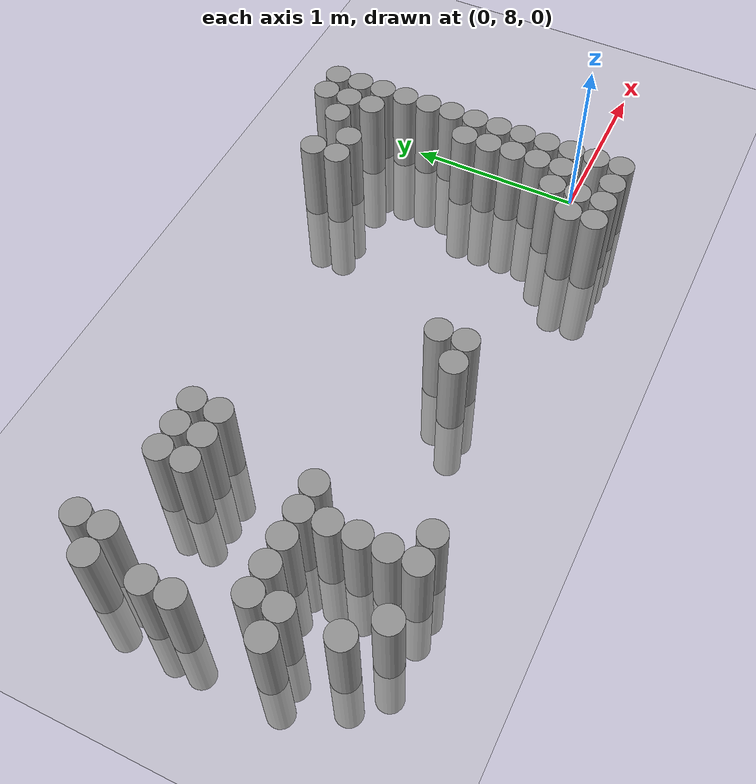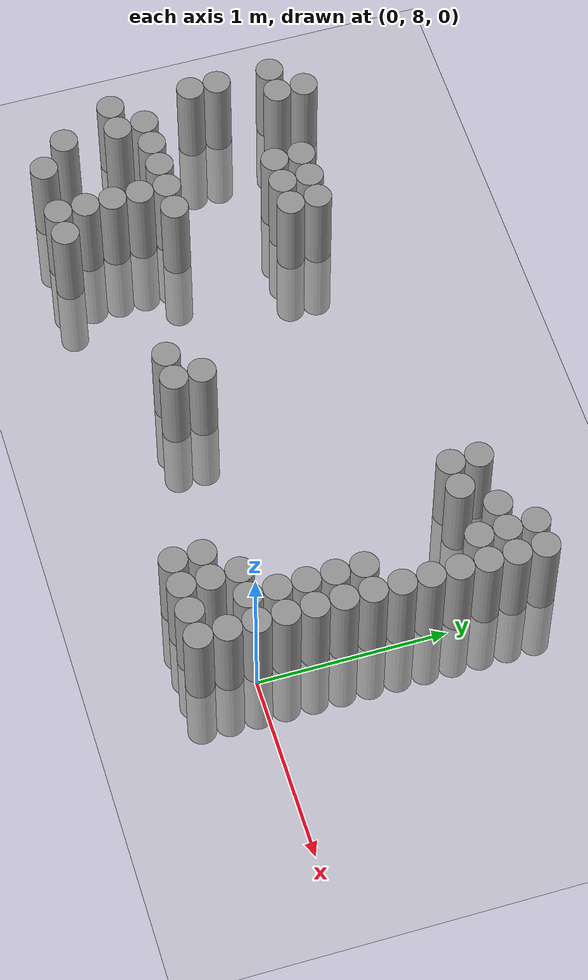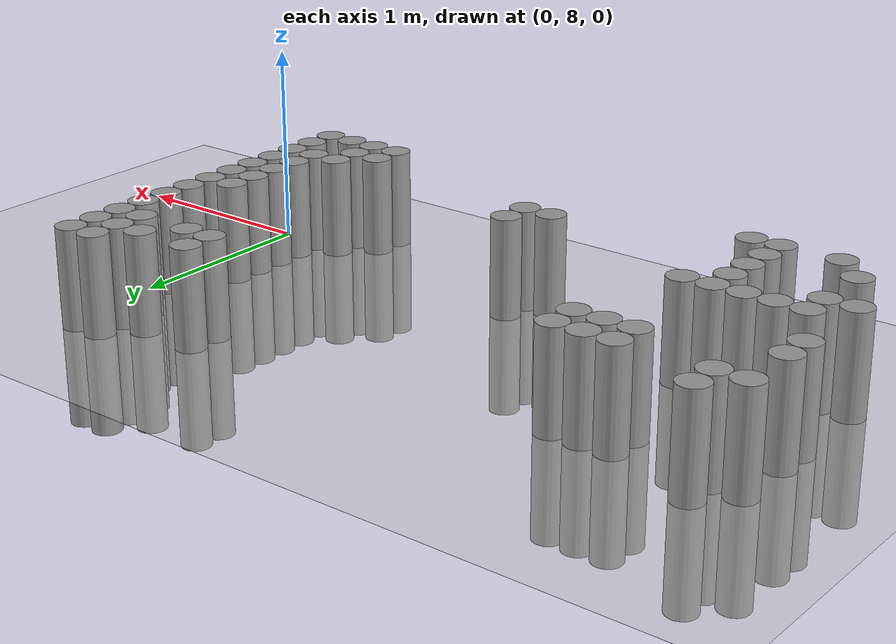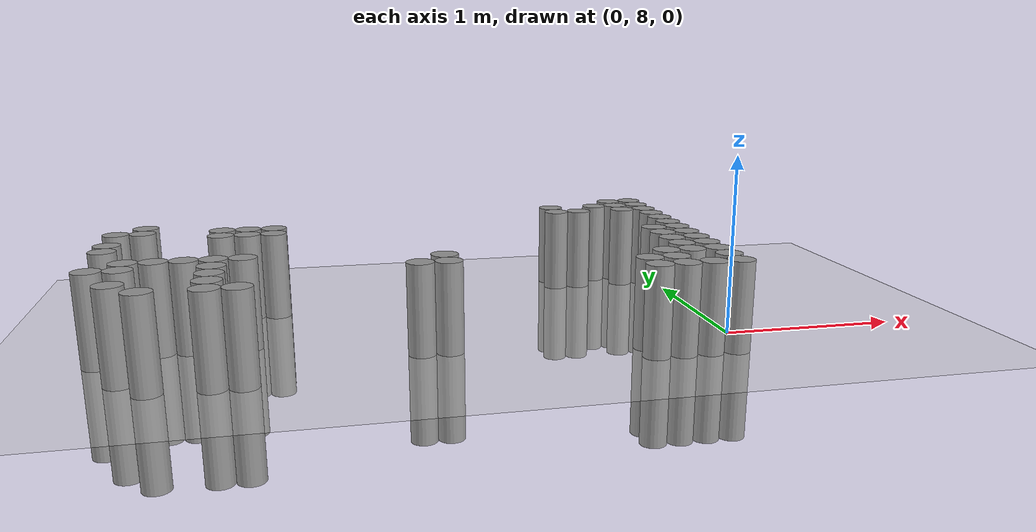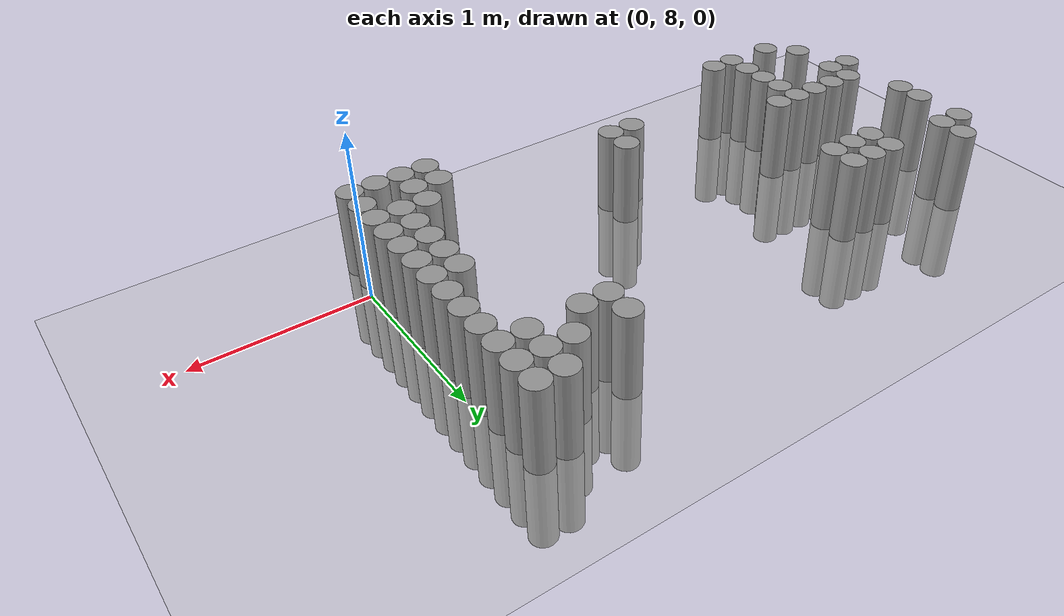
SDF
<sdf version="1.6">
 <world name="default">
  <model name="ground_plane">
   <static>1</static>
   <static>1</static>
   <link name="link">
    <collision name="collision">
     <geometry><plane><normal>0 0 1</normal><size>100 100</size></plane></geometry>
     <surface><friction><ode><mu>100</mu><mu2>50</mu2></ode></friction></surface>
    </collision>
    <visual name="visual">
     <cast_shadows>0</cast_shadows>
     <geometry><plane><normal>0 0 1</normal><size>100 100</size></plane></geometry>
     <material>
      <script><uri>file://media/materials/scripts/gazebo.material</uri><name>Gazebo/Grey</name></script>
     </material>
    </visual>
   </link>
  </model>
  <model name="unit_cylinder_165">
   <static>1</static>
   <pose>-3.375000 8.175000 0.000000 0.000000 0.000000 0.000000</pose>
   <link name="link">
    <inertial>
     <mass>1</mass>
     <inertia><ixx>0.145833</ixx><ixy>0</ixy><ixz>0</ixz><iyy>0.145833</iyy><iyz>0</iyz><izz>0.125</izz></inertia>
    </inertial>
    <collision name="collision">
     <geometry><cylinder><radius>0.075000</radius><length>1</length></cylinder></geometry>
    </collision>
    <visual name="visual">
     <geometry><cylinder><radius>0.075000</radius><length>1</length></cylinder></geometry>
     <material>
      <script><name>Gazebo/Grey</name><uri>file://media/materials/scripts/gazebo.material</uri></script>
     </material>
    </visual>
   </link>
  </model>
  <model name="unit_cylinder_166">
   <static>1</static>
   <pose>-3.375000 8.625000 0.000000 0.000000 0.000000 0.000000</pose>
   <link name="link">
    <inertial>
     <mass>1</mass>
     <inertia><ixx>0.145833</ixx><ixy>0</ixy><ixz>0</ixz><iyy>0.145833</iyy><iyz>0</iyz><izz>0.125</izz></inertia>
    </inertial>
    <collision name="collision">
     <geometry><cylinder><radius>0.075000</radius><length>1</length></cylinder></geometry>
    </collision>
    <visual name="visual">
     <geometry><cylinder><radius>0.075000</radius><length>1</length></cylinder></geometry>
     <material>
      <script><name>Gazebo/Grey</name><uri>file://media/materials/scripts/gazebo.material</uri></script>
     </material>
    </visual>
   </link>
  </model>
  <model name="unit_cylinder_167">
   <static>1</static>
   <pose>-3.375000 8.775000 0.000000 0.000000 0.000000 0.000000</pose>
   <link name="link">
    <inertial>
     <mass>1</mass>
     <inertia><ixx>0.145833</ixx><ixy>0</ixy><ixz>0</ixz><iyy>0.145833</iyy><iyz>0</iyz><izz>0.125</izz></inertia>
    </inertial>
    <collision name="collision">
     <geometry><cylinder><radius>0.075000</radius><length>1</length></cylinder></geometry>
    </collision>
    <visual name="visual">
     <geometry><cylinder><radius>0.075000</radius><length>1</length></cylinder></geometry>
     <material>
      <script><name>Gazebo/Grey</name><uri>file://media/materials/scripts/gazebo.material</uri></script>
     </material>
    </visual>
   </link>
  </model>
  <model name="unit_cylinder_168">
   <static>1</static>
   <pose>-3.375000 9.075000 0.000000 0.000000 0.000000 0.000000</pose>
   <link name="link">
    <inertial>
     <mass>1</mass>
     <inertia><ixx>0.145833</ixx><ixy>0</ixy><ixz>0</ixz><iyy>0.145833</iyy><iyz>0</iyz><izz>0.125</izz></inertia>
    </inertial>
    <collision name="collision">
     <geometry><cylinder><radius>0.075000</radius><length>1</length></cylinder></geometry>
    </collision>
    <visual name="visual">
     <geometry><cylinder><radius>0.075000</radius><length>1</length></cylinder></geometry>
     <material>
      <script><name>Gazebo/Grey</name><uri>file://media/materials/scripts/gazebo.material</uri></script>
     </material>
    </visual>
   </link>
  </model>
  <model name="unit_cylinder_175">
   <static>1</static>
   <pose>-3.225000 7.875000 0.000000 0.000000 0.000000 0.000000</pose>
   <link name="link">
    <inertial>
     <mass>1</mass>
     <inertia><ixx>0.145833</ixx><ixy>0</ixy><ixz>0</ixz><iyy>0.145833</iyy><iyz>0</iyz><izz>0.125</izz></inertia>
    </inertial>
    <collision name="collision">
     <geometry><cylinder><radius>0.075000</radius><length>1</length></cylinder></geometry>
    </collision>
    <visual name="visual">
     <geometry><cylinder><radius>0.075000</radius><length>1</length></cylinder></geometry>
     <material>
      <script><name>Gazebo/Grey</name><uri>file://media/materials/scripts/gazebo.material</uri></script>
     </material>
    </visual>
   </link>
  </model>
  <model name="unit_cylinder_176">
   <static>1</static>
   <pose>-3.225000 8.175000 0.000000 0.000000 0.000000 0.000000</pose>
   <link name="link">
    <inertial>
     <mass>1</mass>
     <inertia><ixx>0.145833</ixx><ixy>0</ixy><ixz>0</ixz><iyy>0.145833</iyy><iyz>0</iyz><izz>0.125</izz></inertia>
    </inertial>
    <collision name="collision">
     <geometry><cylinder><radius>0.075000</radius><length>1</length></cylinder></geometry>
    </collision>
    <visual name="visual">
     <geometry><cylinder><radius>0.075000</radius><length>1</length></cylinder></geometry>
     <material>
      <script><name>Gazebo/Grey</name><uri>file://media/materials/scripts/gazebo.material</uri></script>
     </material>
    </visual>
   </link>
  </model>
  <model name="unit_cylinder_177">
   <static>1</static>
   <pose>-3.225000 8.325000 0.000000 0.000000 0.000000 0.000000</pose>
   <link name="link">
    <inertial>
     <mass>1</mass>
     <inertia><ixx>0.145833</ixx><ixy>0</ixy><ixz>0</ixz><iyy>0.145833</iyy><iyz>0</iyz><izz>0.125</izz></inertia>
    </inertial>
    <collision name="collision">
     <geometry><cylinder><radius>0.075000</radius><length>1</length></cylinder></geometry>
    </collision>
    <visual name="visual">
     <geometry><cylinder><radius>0.075000</radius><length>1</length></cylinder></geometry>
     <material>
      <script><name>Gazebo/Grey</name><uri>file://media/materials/scripts/gazebo.material</uri></script>
     </material>
    </visual>
   </link>
  </model>
  <model name="unit_cylinder_178">
   <static>1</static>
   <pose>-3.225000 9.075000 0.000000 0.000000 0.000000 0.000000</pose>
   <link name="link">
    <inertial>
     <mass>1</mass>
     <inertia><ixx>0.145833</ixx><ixy>0</ixy><ixz>0</ixz><iyy>0.145833</iyy><iyz>0</iyz><izz>0.125</izz></inertia>
    </inertial>
    <collision name="collision">
     <geometry><cylinder><radius>0.075000</radius><length>1</length></cylinder></geometry>
    </collision>
    <visual name="visual">
     <geometry><cylinder><radius>0.075000</radius><length>1</length></cylinder></geometry>
     <material>
      <script><name>Gazebo/Grey</name><uri>file://media/materials/scripts/gazebo.material</uri></script>
     </material>
    </visual>
   </link>
  </model>
  <model name="unit_cylinder_179">
   <static>1</static>
   <pose>-3.225000 9.225000 0.000000 0.000000 0.000000 0.000000</pose>
   <link name="link">
    <inertial>
     <mass>1</mass>
     <inertia><ixx>0.145833</ixx><ixy>0</ixy><ixz>0</ixz><iyy>0.145833</iyy><iyz>0</iyz><izz>0.125</izz></inertia>
    </inertial>
    <collision name="collision">
     <geometry><cylinder><radius>0.075000</radius><length>1</length></cylinder></geometry>
    </collision>
    <visual name="visual">
     <geometry><cylinder><radius>0.075000</radius><length>1</length></cylinder></geometry>
     <material>
      <script><name>Gazebo/Grey</name><uri>file://media/materials/scripts/gazebo.material</uri></script>
     </material>
    </visual>
   </link>
  </model>
  <model name="unit_cylinder_184">
   <static>1</static>
   <pose>-3.075000 7.725000 0.000000 0.000000 0.000000 0.000000</pose>
   <link name="link">
    <inertial>
     <mass>1</mass>
     <inertia><ixx>0.145833</ixx><ixy>0</ixy><ixz>0</ixz><iyy>0.145833</iyy><iyz>0</iyz><izz>0.125</izz></inertia>
    </inertial>
    <collision name="collision">
     <geometry><cylinder><radius>0.075000</radius><length>1</length></cylinder></geometry>
    </collision>
    <visual name="visual">
     <geometry><cylinder><radius>0.075000</radius><length>1</length></cylinder></geometry>
     <material>
      <script><name>Gazebo/Grey</name><uri>file://media/materials/scripts/gazebo.material</uri></script>
     </material>
    </visual>
   </link>
  </model>
  <model name="unit_cylinder_185">
   <static>1</static>
   <pose>-3.075000 8.325000 0.000000 0.000000 0.000000 0.000000</pose>
   <link name="link">
    <inertial>
     <mass>1</mass>
     <inertia><ixx>0.145833</ixx><ixy>0</ixy><ixz>0</ixz><iyy>0.145833</iyy><iyz>0</iyz><izz>0.125</izz></inertia>
    </inertial>
    <collision name="collision">
     <geometry><cylinder><radius>0.075000</radius><length>1</length></cylinder></geometry>
    </collision>
    <visual name="visual">
     <geometry><cylinder><radius>0.075000</radius><length>1</length></cylinder></geometry>
     <material>
      <script><name>Gazebo/Grey</name><uri>file://media/materials/scripts/gazebo.material</uri></script>
     </material>
    </visual>
   </link>
  </model>
  <model name="unit_cylinder_192">
   <static>1</static>
   <pose>-2.925000 8.325000 0.000000 0.000000 0.000000 0.000000</pose>
   <link name="link">
    <inertial>
     <mass>1</mass>
     <inertia><ixx>0.145833</ixx><ixy>0</ixy><ixz>0</ixz><iyy>0.145833</iyy><iyz>0</iyz><izz>0.125</izz></inertia>
    </inertial>
    <collision name="collision">
     <geometry><cylinder><radius>0.075000</radius><length>1</length></cylinder></geometry>
    </collision>
    <visual name="visual">
     <geometry><cylinder><radius>0.075000</radius><length>1</length></cylinder></geometry>
     <material>
      <script><name>Gazebo/Grey</name><uri>file://media/materials/scripts/gazebo.material</uri></script>
     </material>
    </visual>
   </link>
  </model>
  <model name="unit_cylinder_204">
   <static>1</static>
   <pose>-2.775000 7.725000 0.000000 0.000000 0.000000 0.000000</pose>
   <link name="link">
    <inertial>
     <mass>1</mass>
     <inertia><ixx>0.145833</ixx><ixy>0</ixy><ixz>0</ixz><iyy>0.145833</iyy><iyz>0</iyz><izz>0.125</izz></inertia>
    </inertial>
    <collision name="collision">
     <geometry><cylinder><radius>0.075000</radius><length>1</length></cylinder></geometry>
    </collision>
    <visual name="visual">
     <geometry><cylinder><radius>0.075000</radius><length>1</length></cylinder></geometry>
     <material>
      <script><name>Gazebo/Grey</name><uri>file://media/materials/scripts/gazebo.material</uri></script>
     </material>
    </visual>
   </link>
  </model>
  <model name="unit_cylinder_205">
   <static>1</static>
   <pose>-2.775000 7.875000 0.000000 0.000000 0.000000 0.000000</pose>
   <link name="link">
    <inertial>
     <mass>1</mass>
     <inertia><ixx>0.145833</ixx><ixy>0</ixy><ixz>0</ixz><iyy>0.145833</iyy><iyz>0</iyz><izz>0.125</izz></inertia>
    </inertial>
    <collision name="collision">
     <geometry><cylinder><radius>0.075000</radius><length>1</length></cylinder></geometry>
    </collision>
    <visual name="visual">
     <geometry><cylinder><radius>0.075000</radius><length>1</length></cylinder></geometry>
     <material>
      <script><name>Gazebo/Grey</name><uri>file://media/materials/scripts/gazebo.material</uri></script>
     </material>
    </visual>
   </link>
  </model>
  <model name="unit_cylinder_206">
   <static>1</static>
   <pose>-2.775000 8.025000 0.000000 0.000000 0.000000 0.000000</pose>
   <link name="link">
    <inertial>
     <mass>1</mass>
     <inertia><ixx>0.145833</ixx><ixy>0</ixy><ixz>0</ixz><iyy>0.145833</iyy><iyz>0</iyz><izz>0.125</izz></inertia>
    </inertial>
    <collision name="collision">
     <geometry><cylinder><radius>0.075000</radius><length>1</length></cylinder></geometry>
    </collision>
    <visual name="visual">
     <geometry><cylinder><radius>0.075000</radius><length>1</length></cylinder></geometry>
     <material>
      <script><name>Gazebo/Grey</name><uri>file://media/materials/scripts/gazebo.material</uri></script>
     </material>
    </visual>
   </link>
  </model>
  <model name="unit_cylinder_207">
   <static>1</static>
   <pose>-2.775000 8.175000 0.000000 0.000000 0.000000 0.000000</pose>
   <link name="link">
    <inertial>
     <mass>1</mass>
     <inertia><ixx>0.145833</ixx><ixy>0</ixy><ixz>0</ixz><iyy>0.145833</iyy><iyz>0</iyz><izz>0.125</izz></inertia>
    </inertial>
    <collision name="collision">
     <geometry><cylinder><radius>0.075000</radius><length>1</length></cylinder></geometry>
    </collision>
    <visual name="visual">
     <geometry><cylinder><radius>0.075000</radius><length>1</length></cylinder></geometry>
     <material>
      <script><name>Gazebo/Grey</name><uri>file://media/materials/scripts/gazebo.material</uri></script>
     </material>
    </visual>
   </link>
  </model>
  <model name="unit_cylinder_208">
   <static>1</static>
   <pose>-2.775000 8.325000 0.000000 0.000000 0.000000 0.000000</pose>
   <link name="link">
    <inertial>
     <mass>1</mass>
     <inertia><ixx>0.145833</ixx><ixy>0</ixy><ixz>0</ixz><iyy>0.145833</iyy><iyz>0</iyz><izz>0.125</izz></inertia>
    </inertial>
    <collision name="collision">
     <geometry><cylinder><radius>0.075000</radius><length>1</length></cylinder></geometry>
    </collision>
    <visual name="visual">
     <geometry><cylinder><radius>0.075000</radius><length>1</length></cylinder></geometry>
     <material>
      <script><name>Gazebo/Grey</name><uri>file://media/materials/scripts/gazebo.material</uri></script>
     </material>
    </visual>
   </link>
  </model>
  <model name="unit_cylinder_209">
   <static>1</static>
   <pose>-2.775000 8.925000 0.000000 0.000000 0.000000 0.000000</pose>
   <link name="link">
    <inertial>
     <mass>1</mass>
     <inertia><ixx>0.145833</ixx><ixy>0</ixy><ixz>0</ixz><iyy>0.145833</iyy><iyz>0</iyz><izz>0.125</izz></inertia>
    </inertial>
    <collision name="collision">
     <geometry><cylinder><radius>0.075000</radius><length>1</length></cylinder></geometry>
    </collision>
    <visual name="visual">
     <geometry><cylinder><radius>0.075000</radius><length>1</length></cylinder></geometry>
     <material>
      <script><name>Gazebo/Grey</name><uri>file://media/materials/scripts/gazebo.material</uri></script>
     </material>
    </visual>
   </link>
  </model>
  <model name="unit_cylinder_210">
   <static>1</static>
   <pose>-2.775000 9.075000 0.000000 0.000000 0.000000 0.000000</pose>
   <link name="link">
    <inertial>
     <mass>1</mass>
     <inertia><ixx>0.145833</ixx><ixy>0</ixy><ixz>0</ixz><iyy>0.145833</iyy><iyz>0</iyz><izz>0.125</izz></inertia>
    </inertial>
    <collision name="collision">
     <geometry><cylinder><radius>0.075000</radius><length>1</length></cylinder></geometry>
    </collision>
    <visual name="visual">
     <geometry><cylinder><radius>0.075000</radius><length>1</length></cylinder></geometry>
     <material>
      <script><name>Gazebo/Grey</name><uri>file://media/materials/scripts/gazebo.material</uri></script>
     </material>
    </visual>
   </link>
  </model>
  <model name="unit_cylinder_216">
   <static>1</static>
   <pose>-2.625000 7.725000 0.000000 0.000000 0.000000 0.000000</pose>
   <link name="link">
    <inertial>
     <mass>1</mass>
     <inertia><ixx>0.145833</ixx><ixy>0</ixy><ixz>0</ixz><iyy>0.145833</iyy><iyz>0</iyz><izz>0.125</izz></inertia>
    </inertial>
    <collision name="collision">
     <geometry><cylinder><radius>0.075000</radius><length>1</length></cylinder></geometry>
    </collision>
    <visual name="visual">
     <geometry><cylinder><radius>0.075000</radius><length>1</length></cylinder></geometry>
     <material>
      <script><name>Gazebo/Grey</name><uri>file://media/materials/scripts/gazebo.material</uri></script>
     </material>
    </visual>
   </link>
  </model>
  <model name="unit_cylinder_217">
   <static>1</static>
   <pose>-2.625000 8.325000 0.000000 0.000000 0.000000 0.000000</pose>
   <link name="link">
    <inertial>
     <mass>1</mass>
     <inertia><ixx>0.145833</ixx><ixy>0</ixy><ixz>0</ixz><iyy>0.145833</iyy><iyz>0</iyz><izz>0.125</izz></inertia>
    </inertial>
    <collision name="collision">
     <geometry><cylinder><radius>0.075000</radius><length>1</length></cylinder></geometry>
    </collision>
    <visual name="visual">
     <geometry><cylinder><radius>0.075000</radius><length>1</length></cylinder></geometry>
     <material>
      <script><name>Gazebo/Grey</name><uri>file://media/materials/scripts/gazebo.material</uri></script>
     </material>
    </visual>
   </link>
  </model>
  <model name="unit_cylinder_218">
   <static>1</static>
   <pose>-2.625000 8.925000 0.000000 0.000000 0.000000 0.000000</pose>
   <link name="link">
    <inertial>
     <mass>1</mass>
     <inertia><ixx>0.145833</ixx><ixy>0</ixy><ixz>0</ixz><iyy>0.145833</iyy><iyz>0</iyz><izz>0.125</izz></inertia>
    </inertial>
    <collision name="collision">
     <geometry><cylinder><radius>0.075000</radius><length>1</length></cylinder></geometry>
    </collision>
    <visual name="visual">
     <geometry><cylinder><radius>0.075000</radius><length>1</length></cylinder></geometry>
     <material>
      <script><name>Gazebo/Grey</name><uri>file://media/materials/scripts/gazebo.material</uri></script>
     </material>
    </visual>
   </link>
  </model>
  <model name="unit_cylinder_219">
   <static>1</static>
   <pose>-2.625000 9.075000 0.000000 0.000000 0.000000 0.000000</pose>
   <link name="link">
    <inertial>
     <mass>1</mass>
     <inertia><ixx>0.145833</ixx><ixy>0</ixy><ixz>0</ixz><iyy>0.145833</iyy><iyz>0</iyz><izz>0.125</izz></inertia>
    </inertial>
    <collision name="collision">
     <geometry><cylinder><radius>0.075000</radius><length>1</length></cylinder></geometry>
    </collision>
    <visual name="visual">
     <geometry><cylinder><radius>0.075000</radius><length>1</length></cylinder></geometry>
     <material>
      <script><name>Gazebo/Grey</name><uri>file://media/materials/scripts/gazebo.material</uri></script>
     </material>
    </visual>
   </link>
  </model>
  <model name="unit_cylinder_226">
   <static>1</static>
   <pose>-2.475000 8.925000 0.000000 0.000000 0.000000 0.000000</pose>
   <link name="link">
    <inertial>
     <mass>1</mass>
     <inertia><ixx>0.145833</ixx><ixy>0</ixy><ixz>0</ixz><iyy>0.145833</iyy><iyz>0</iyz><izz>0.125</izz></inertia>
    </inertial>
    <collision name="collision">
     <geometry><cylinder><radius>0.075000</radius><length>1</length></cylinder></geometry>
    </collision>
    <visual name="visual">
     <geometry><cylinder><radius>0.075000</radius><length>1</length></cylinder></geometry>
     <material>
      <script><name>Gazebo/Grey</name><uri>file://media/materials/scripts/gazebo.material</uri></script>
     </material>
    </visual>
   </link>
  </model>
  <model name="unit_cylinder_227">
   <static>1</static>
   <pose>-2.475000 9.075000 0.000000 0.000000 0.000000 0.000000</pose>
   <link name="link">
    <inertial>
     <mass>1</mass>
     <inertia><ixx>0.145833</ixx><ixy>0</ixy><ixz>0</ixz><iyy>0.145833</iyy><iyz>0</iyz><izz>0.125</izz></inertia>
    </inertial>
    <collision name="collision">
     <geometry><cylinder><radius>0.075000</radius><length>1</length></cylinder></geometry>
    </collision>
    <visual name="visual">
     <geometry><cylinder><radius>0.075000</radius><length>1</length></cylinder></geometry>
     <material>
      <script><name>Gazebo/Grey</name><uri>file://media/materials/scripts/gazebo.material</uri></script>
     </material>
    </visual>
   </link>
  </model>
  <model name="unit_cylinder_231">
   <static>1</static>
   <pose>-1.725000 8.025000 0.000000 0.000000 0.000000 0.000000</pose>
   <link name="link">
    <inertial>
     <mass>1</mass>
     <inertia><ixx>0.145833</ixx><ixy>0</ixy><ixz>0</ixz><iyy>0.145833</iyy><iyz>0</iyz><izz>0.125</izz></inertia>
    </inertial>
    <collision name="collision">
     <geometry><cylinder><radius>0.075000</radius><length>1</length></cylinder></geometry>
    </collision>
    <visual name="visual">
     <geometry><cylinder><radius>0.075000</radius><length>1</length></cylinder></geometry>
     <material>
      <script><name>Gazebo/Grey</name><uri>file://media/materials/scripts/gazebo.material</uri></script>
     </material>
    </visual>
   </link>
  </model>
  <model name="unit_cylinder_232">
   <static>1</static>
   <pose>-1.575000 8.025000 0.000000 0.000000 0.000000 0.000000</pose>
   <link name="link">
    <inertial>
     <mass>1</mass>
     <inertia><ixx>0.145833</ixx><ixy>0</ixy><ixz>0</ixz><iyy>0.145833</iyy><iyz>0</iyz><izz>0.125</izz></inertia>
    </inertial>
    <collision name="collision">
     <geometry><cylinder><radius>0.075000</radius><length>1</length></cylinder></geometry>
    </collision>
    <visual name="visual">
     <geometry><cylinder><radius>0.075000</radius><length>1</length></cylinder></geometry>
     <material>
      <script><name>Gazebo/Grey</name><uri>file://media/materials/scripts/gazebo.material</uri></script>
     </material>
    </visual>
   </link>
  </model>
  <model name="unit_cylinder_233">
   <static>1</static>
   <pose>-1.575000 8.175000 0.000000 0.000000 0.000000 0.000000</pose>
   <link name="link">
    <inertial>
     <mass>1</mass>
     <inertia><ixx>0.145833</ixx><ixy>0</ixy><ixz>0</ixz><iyy>0.145833</iyy><iyz>0</iyz><izz>0.125</izz></inertia>
    </inertial>
    <collision name="collision">
     <geometry><cylinder><radius>0.075000</radius><length>1</length></cylinder></geometry>
    </collision>
    <visual name="visual">
     <geometry><cylinder><radius>0.075000</radius><length>1</length></cylinder></geometry>
     <material>
      <script><name>Gazebo/Grey</name><uri>file://media/materials/scripts/gazebo.material</uri></script>
     </material>
    </visual>
   </link>
  </model>
  <model name="unit_cylinder_246">
   <static>1</static>
   <pose>-0.675000 9.225000 0.000000 0.000000 0.000000 0.000000</pose>
   <link name="link">
    <inertial>
     <mass>1</mass>
     <inertia><ixx>0.145833</ixx><ixy>0</ixy><ixz>0</ixz><iyy>0.145833</iyy><iyz>0</iyz><izz>0.125</izz></inertia>
    </inertial>
    <collision name="collision">
     <geometry><cylinder><radius>0.075000</radius><length>1</length></cylinder></geometry>
    </collision>
    <visual name="visual">
     <geometry><cylinder><radius>0.075000</radius><length>1</length></cylinder></geometry>
     <material>
      <script><name>Gazebo/Grey</name><uri>file://media/materials/scripts/gazebo.material</uri></script>
     </material>
    </visual>
   </link>
  </model>
  <model name="unit_cylinder_247">
   <static>1</static>
   <pose>-0.675000 9.375000 0.000000 0.000000 0.000000 0.000000</pose>
   <link name="link">
    <inertial>
     <mass>1</mass>
     <inertia><ixx>0.145833</ixx><ixy>0</ixy><ixz>0</ixz><iyy>0.145833</iyy><iyz>0</iyz><izz>0.125</izz></inertia>
    </inertial>
    <collision name="collision">
     <geometry><cylinder><radius>0.075000</radius><length>1</length></cylinder></geometry>
    </collision>
    <visual name="visual">
     <geometry><cylinder><radius>0.075000</radius><length>1</length></cylinder></geometry>
     <material>
      <script><name>Gazebo/Grey</name><uri>file://media/materials/scripts/gazebo.material</uri></script>
     </material>
    </visual>
   </link>
  </model>
  <model name="unit_cylinder_248">
   <static>1</static>
   <pose>-0.525000 7.725000 0.000000 0.000000 0.000000 0.000000</pose>
   <link name="link">
    <inertial>
     <mass>1</mass>
     <inertia><ixx>0.145833</ixx><ixy>0</ixy><ixz>0</ixz><iyy>0.145833</iyy><iyz>0</iyz><izz>0.125</izz></inertia>
    </inertial>
    <collision name="collision">
     <geometry><cylinder><radius>0.075000</radius><length>1</length></cylinder></geometry>
    </collision>
    <visual name="visual">
     <geometry><cylinder><radius>0.075000</radius><length>1</length></cylinder></geometry>
     <material>
      <script><name>Gazebo/Grey</name><uri>file://media/materials/scripts/gazebo.material</uri></script>
     </material>
    </visual>
   </link>
  </model>
  <model name="unit_cylinder_249">
   <static>1</static>
   <pose>-0.525000 7.875000 0.000000 0.000000 0.000000 0.000000</pose>
   <link name="link">
    <inertial>
     <mass>1</mass>
     <inertia><ixx>0.145833</ixx><ixy>0</ixy><ixz>0</ixz><iyy>0.145833</iyy><iyz>0</iyz><izz>0.125</izz></inertia>
    </inertial>
    <collision name="collision">
     <geometry><cylinder><radius>0.075000</radius><length>1</length></cylinder></geometry>
    </collision>
    <visual name="visual">
     <geometry><cylinder><radius>0.075000</radius><length>1</length></cylinder></geometry>
     <material>
      <script><name>Gazebo/Grey</name><uri>file://media/materials/scripts/gazebo.material</uri></script>
     </material>
    </visual>
   </link>
  </model>
  <model name="unit_cylinder_250">
   <static>1</static>
   <pose>-0.525000 9.225000 0.000000 0.000000 0.000000 0.000000</pose>
   <link name="link">
    <inertial>
     <mass>1</mass>
     <inertia><ixx>0.145833</ixx><ixy>0</ixy><ixz>0</ixz><iyy>0.145833</iyy><iyz>0</iyz><izz>0.125</izz></inertia>
    </inertial>
    <collision name="collision">
     <geometry><cylinder><radius>0.075000</radius><length>1</length></cylinder></geometry>
    </collision>
    <visual name="visual">
     <geometry><cylinder><radius>0.075000</radius><length>1</length></cylinder></geometry>
     <material>
      <script><name>Gazebo/Grey</name><uri>file://media/materials/scripts/gazebo.material</uri></script>
     </material>
    </visual>
   </link>
  </model>
  <model name="unit_cylinder_251">
   <static>1</static>
   <pose>-0.375000 7.725000 0.000000 0.000000 0.000000 0.000000</pose>
   <link name="link">
    <inertial>
     <mass>1</mass>
     <inertia><ixx>0.145833</ixx><ixy>0</ixy><ixz>0</ixz><iyy>0.145833</iyy><iyz>0</iyz><izz>0.125</izz></inertia>
    </inertial>
    <collision name="collision">
     <geometry><cylinder><radius>0.075000</radius><length>1</length></cylinder></geometry>
    </collision>
    <visual name="visual">
     <geometry><cylinder><radius>0.075000</radius><length>1</length></cylinder></geometry>
     <material>
      <script><name>Gazebo/Grey</name><uri>file://media/materials/scripts/gazebo.material</uri></script>
     </material>
    </visual>
   </link>
  </model>
  <model name="unit_cylinder_252">
   <static>1</static>
   <pose>-0.375000 7.875000 0.000000 0.000000 0.000000 0.000000</pose>
   <link name="link">
    <inertial>
     <mass>1</mass>
     <inertia><ixx>0.145833</ixx><ixy>0</ixy><ixz>0</ixz><iyy>0.145833</iyy><iyz>0</iyz><izz>0.125</izz></inertia>
    </inertial>
    <collision name="collision">
     <geometry><cylinder><radius>0.075000</radius><length>1</length></cylinder></geometry>
    </collision>
    <visual name="visual">
     <geometry><cylinder><radius>0.075000</radius><length>1</length></cylinder></geometry>
     <material>
      <script><name>Gazebo/Grey</name><uri>file://media/materials/scripts/gazebo.material</uri></script>
     </material>
    </visual>
   </link>
  </model>
  <model name="unit_cylinder_253">
   <static>1</static>
   <pose>-0.375000 8.025000 0.000000 0.000000 0.000000 0.000000</pose>
   <link name="link">
    <inertial>
     <mass>1</mass>
     <inertia><ixx>0.145833</ixx><ixy>0</ixy><ixz>0</ixz><iyy>0.145833</iyy><iyz>0</iyz><izz>0.125</izz></inertia>
    </inertial>
    <collision name="collision">
     <geometry><cylinder><radius>0.075000</radius><length>1</length></cylinder></geometry>
    </collision>
    <visual name="visual">
     <geometry><cylinder><radius>0.075000</radius><length>1</length></cylinder></geometry>
     <material>
      <script><name>Gazebo/Grey</name><uri>file://media/materials/scripts/gazebo.material</uri></script>
     </material>
    </visual>
   </link>
  </model>
  <model name="unit_cylinder_254">
   <static>1</static>
   <pose>-0.375000 9.375000 0.000000 0.000000 0.000000 0.000000</pose>
   <link name="link">
    <inertial>
     <mass>1</mass>
     <inertia><ixx>0.145833</ixx><ixy>0</ixy><ixz>0</ixz><iyy>0.145833</iyy><iyz>0</iyz><izz>0.125</izz></inertia>
    </inertial>
    <collision name="collision">
     <geometry><cylinder><radius>0.075000</radius><length>1</length></cylinder></geometry>
    </collision>
    <visual name="visual">
     <geometry><cylinder><radius>0.075000</radius><length>1</length></cylinder></geometry>
     <material>
      <script><name>Gazebo/Grey</name><uri>file://media/materials/scripts/gazebo.material</uri></script>
     </material>
    </visual>
   </link>
  </model>
  <model name="unit_cylinder_256">
   <static>1</static>
   <pose>-0.225000 7.725000 0.000000 0.000000 0.000000 0.000000</pose>
   <link name="link">
    <inertial>
     <mass>1</mass>
     <inertia><ixx>0.145833</ixx><ixy>0</ixy><ixz>0</ixz><iyy>0.145833</iyy><iyz>0</iyz><izz>0.125</izz></inertia>
    </inertial>
    <collision name="collision">
     <geometry><cylinder><radius>0.075000</radius><length>1</length></cylinder></geometry>
    </collision>
    <visual name="visual">
     <geometry><cylinder><radius>0.075000</radius><length>1</length></cylinder></geometry>
     <material>
      <script><name>Gazebo/Grey</name><uri>file://media/materials/scripts/gazebo.material</uri></script>
     </material>
    </visual>
   </link>
  </model>
  <model name="unit_cylinder_257">
   <static>1</static>
   <pose>-0.225000 8.025000 0.000000 0.000000 0.000000 0.000000</pose>
   <link name="link">
    <inertial>
     <mass>1</mass>
     <inertia><ixx>0.145833</ixx><ixy>0</ixy><ixz>0</ixz><iyy>0.145833</iyy><iyz>0</iyz><izz>0.125</izz></inertia>
    </inertial>
    <collision name="collision">
     <geometry><cylinder><radius>0.075000</radius><length>1</length></cylinder></geometry>
    </collision>
    <visual name="visual">
     <geometry><cylinder><radius>0.075000</radius><length>1</length></cylinder></geometry>
     <material>
      <script><name>Gazebo/Grey</name><uri>file://media/materials/scripts/gazebo.material</uri></script>
     </material>
    </visual>
   </link>
  </model>
  <model name="unit_cylinder_258">
   <static>1</static>
   <pose>-0.225000 8.175000 0.000000 0.000000 0.000000 0.000000</pose>
   <link name="link">
    <inertial>
     <mass>1</mass>
     <inertia><ixx>0.145833</ixx><ixy>0</ixy><ixz>0</ixz><iyy>0.145833</iyy><iyz>0</iyz><izz>0.125</izz></inertia>
    </inertial>
    <collision name="collision">
     <geometry><cylinder><radius>0.075000</radius><length>1</length></cylinder></geometry>
    </collision>
    <visual name="visual">
     <geometry><cylinder><radius>0.075000</radius><length>1</length></cylinder></geometry>
     <material>
      <script><name>Gazebo/Grey</name><uri>file://media/materials/scripts/gazebo.material</uri></script>
     </material>
    </visual>
   </link>
  </model>
  <model name="unit_cylinder_259">
   <static>1</static>
   <pose>-0.225000 8.325000 0.000000 0.000000 0.000000 0.000000</pose>
   <link name="link">
    <inertial>
     <mass>1</mass>
     <inertia><ixx>0.145833</ixx><ixy>0</ixy><ixz>0</ixz><iyy>0.145833</iyy><iyz>0</iyz><izz>0.125</izz></inertia>
    </inertial>
    <collision name="collision">
     <geometry><cylinder><radius>0.075000</radius><length>1</length></cylinder></geometry>
    </collision>
    <visual name="visual">
     <geometry><cylinder><radius>0.075000</radius><length>1</length></cylinder></geometry>
     <material>
      <script><name>Gazebo/Grey</name><uri>file://media/materials/scripts/gazebo.material</uri></script>
     </material>
    </visual>
   </link>
  </model>
  <model name="unit_cylinder_260">
   <static>1</static>
   <pose>-0.225000 8.475000 0.000000 0.000000 0.000000 0.000000</pose>
   <link name="link">
    <inertial>
     <mass>1</mass>
     <inertia><ixx>0.145833</ixx><ixy>0</ixy><ixz>0</ixz><iyy>0.145833</iyy><iyz>0</iyz><izz>0.125</izz></inertia>
    </inertial>
    <collision name="collision">
     <geometry><cylinder><radius>0.075000</radius><length>1</length></cylinder></geometry>
    </collision>
    <visual name="visual">
     <geometry><cylinder><radius>0.075000</radius><length>1</length></cylinder></geometry>
     <material>
      <script><name>Gazebo/Grey</name><uri>file://media/materials/scripts/gazebo.material</uri></script>
     </material>
    </visual>
   </link>
  </model>
  <model name="unit_cylinder_261">
   <static>1</static>
   <pose>-0.225000 8.625000 0.000000 0.000000 0.000000 0.000000</pose>
   <link name="link">
    <inertial>
     <mass>1</mass>
     <inertia><ixx>0.145833</ixx><ixy>0</ixy><ixz>0</ixz><iyy>0.145833</iyy><iyz>0</iyz><izz>0.125</izz></inertia>
    </inertial>
    <collision name="collision">
     <geometry><cylinder><radius>0.075000</radius><length>1</length></cylinder></geometry>
    </collision>
    <visual name="visual">
     <geometry><cylinder><radius>0.075000</radius><length>1</length></cylinder></geometry>
     <material>
      <script><name>Gazebo/Grey</name><uri>file://media/materials/scripts/gazebo.material</uri></script>
     </material>
    </visual>
   </link>
  </model>
  <model name="unit_cylinder_262">
   <static>1</static>
   <pose>-0.225000 9.225000 0.000000 0.000000 0.000000 0.000000</pose>
   <link name="link">
    <inertial>
     <mass>1</mass>
     <inertia><ixx>0.145833</ixx><ixy>0</ixy><ixz>0</ixz><iyy>0.145833</iyy><iyz>0</iyz><izz>0.125</izz></inertia>
    </inertial>
    <collision name="collision">
     <geometry><cylinder><radius>0.075000</radius><length>1</length></cylinder></geometry>
    </collision>
    <visual name="visual">
     <geometry><cylinder><radius>0.075000</radius><length>1</length></cylinder></geometry>
     <material>
      <script><name>Gazebo/Grey</name><uri>file://media/materials/scripts/gazebo.material</uri></script>
     </material>
    </visual>
   </link>
  </model>
  <model name="unit_cylinder_263">
   <static>1</static>
   <pose>-0.225000 9.375000 0.000000 0.000000 0.000000 0.000000</pose>
   <link name="link">
    <inertial>
     <mass>1</mass>
     <inertia><ixx>0.145833</ixx><ixy>0</ixy><ixz>0</ixz><iyy>0.145833</iyy><iyz>0</iyz><izz>0.125</izz></inertia>
    </inertial>
    <collision name="collision">
     <geometry><cylinder><radius>0.075000</radius><length>1</length></cylinder></geometry>
    </collision>
    <visual name="visual">
     <geometry><cylinder><radius>0.075000</radius><length>1</length></cylinder></geometry>
     <material>
      <script><name>Gazebo/Grey</name><uri>file://media/materials/scripts/gazebo.material</uri></script>
     </material>
    </visual>
   </link>
  </model>
  <model name="unit_cylinder_264">
   <static>1</static>
   <pose>-0.225000 9.525000 0.000000 0.000000 0.000000 0.000000</pose>
   <link name="link">
    <inertial>
     <mass>1</mass>
     <inertia><ixx>0.145833</ixx><ixy>0</ixy><ixz>0</ixz><iyy>0.145833</iyy><iyz>0</iyz><izz>0.125</izz></inertia>
    </inertial>
    <collision name="collision">
     <geometry><cylinder><radius>0.075000</radius><length>1</length></cylinder></geometry>
    </collision>
    <visual name="visual">
     <geometry><cylinder><radius>0.075000</radius><length>1</length></cylinder></geometry>
     <material>
      <script><name>Gazebo/Grey</name><uri>file://media/materials/scripts/gazebo.material</uri></script>
     </material>
    </visual>
   </link>
  </model>
  <model name="unit_cylinder_282">
   <static>1</static>
   <pose>-0.075000 7.725000 0.000000 0.000000 0.000000 0.000000</pose>
   <link name="link">
    <inertial>
     <mass>1</mass>
     <inertia><ixx>0.145833</ixx><ixy>0</ixy><ixz>0</ixz><iyy>0.145833</iyy><iyz>0</iyz><izz>0.125</izz></inertia>
    </inertial>
    <collision name="collision">
     <geometry><cylinder><radius>0.075000</radius><length>1</length></cylinder></geometry>
    </collision>
    <visual name="visual">
     <geometry><cylinder><radius>0.075000</radius><length>1</length></cylinder></geometry>
     <material>
      <script><name>Gazebo/Grey</name><uri>file://media/materials/scripts/gazebo.material</uri></script>
     </material>
    </visual>
   </link>
  </model>
  <model name="unit_cylinder_283">
   <static>1</static>
   <pose>-0.075000 7.875000 0.000000 0.000000 0.000000 0.000000</pose>
   <link name="link">
    <inertial>
     <mass>1</mass>
     <inertia><ixx>0.145833</ixx><ixy>0</ixy><ixz>0</ixz><iyy>0.145833</iyy><iyz>0</iyz><izz>0.125</izz></inertia>
    </inertial>
    <collision name="collision">
     <geometry><cylinder><radius>0.075000</radius><length>1</length></cylinder></geometry>
    </collision>
    <visual name="visual">
     <geometry><cylinder><radius>0.075000</radius><length>1</length></cylinder></geometry>
     <material>
      <script><name>Gazebo/Grey</name><uri>file://media/materials/scripts/gazebo.material</uri></script>
     </material>
    </visual>
   </link>
  </model>
  <model name="unit_cylinder_284">
   <static>1</static>
   <pose>-0.075000 8.025000 0.000000 0.000000 0.000000 0.000000</pose>
   <link name="link">
    <inertial>
     <mass>1</mass>
     <inertia><ixx>0.145833</ixx><ixy>0</ixy><ixz>0</ixz><iyy>0.145833</iyy><iyz>0</iyz><izz>0.125</izz></inertia>
    </inertial>
    <collision name="collision">
     <geometry><cylinder><radius>0.075000</radius><length>1</length></cylinder></geometry>
    </collision>
    <visual name="visual">
     <geometry><cylinder><radius>0.075000</radius><length>1</length></cylinder></geometry>
     <material>
      <script><name>Gazebo/Grey</name><uri>file://media/materials/scripts/gazebo.material</uri></script>
     </material>
    </visual>
   </link>
  </model>
  <model name="unit_cylinder_285">
   <static>1</static>
   <pose>-0.075000 8.175000 0.000000 0.000000 0.000000 0.000000</pose>
   <link name="link">
    <inertial>
     <mass>1</mass>
     <inertia><ixx>0.145833</ixx><ixy>0</ixy><ixz>0</ixz><iyy>0.145833</iyy><iyz>0</iyz><izz>0.125</izz></inertia>
    </inertial>
    <collision name="collision">
     <geometry><cylinder><radius>0.075000</radius><length>1</length></cylinder></geometry>
    </collision>
    <visual name="visual">
     <geometry><cylinder><radius>0.075000</radius><length>1</length></cylinder></geometry>
     <material>
      <script><name>Gazebo/Grey</name><uri>file://media/materials/scripts/gazebo.material</uri></script>
     </material>
    </visual>
   </link>
  </model>
  <model name="unit_cylinder_286">
   <static>1</static>
   <pose>-0.075000 8.325000 0.000000 0.000000 0.000000 0.000000</pose>
   <link name="link">
    <inertial>
     <mass>1</mass>
     <inertia><ixx>0.145833</ixx><ixy>0</ixy><ixz>0</ixz><iyy>0.145833</iyy><iyz>0</iyz><izz>0.125</izz></inertia>
    </inertial>
    <collision name="collision">
     <geometry><cylinder><radius>0.075000</radius><length>1</length></cylinder></geometry>
    </collision>
    <visual name="visual">
     <geometry><cylinder><radius>0.075000</radius><length>1</length></cylinder></geometry>
     <material>
      <script><name>Gazebo/Grey</name><uri>file://media/materials/scripts/gazebo.material</uri></script>
     </material>
    </visual>
   </link>
  </model>
  <model name="unit_cylinder_287">
   <static>1</static>
   <pose>-0.075000 8.475000 0.000000 0.000000 0.000000 0.000000</pose>
   <link name="link">
    <inertial>
     <mass>1</mass>
     <inertia><ixx>0.145833</ixx><ixy>0</ixy><ixz>0</ixz><iyy>0.145833</iyy><iyz>0</iyz><izz>0.125</izz></inertia>
    </inertial>
    <collision name="collision">
     <geometry><cylinder><radius>0.075000</radius><length>1</length></cylinder></geometry>
    </collision>
    <visual name="visual">
     <geometry><cylinder><radius>0.075000</radius><length>1</length></cylinder></geometry>
     <material>
      <script><name>Gazebo/Grey</name><uri>file://media/materials/scripts/gazebo.material</uri></script>
     </material>
    </visual>
   </link>
  </model>
  <model name="unit_cylinder_288">
   <static>1</static>
   <pose>-0.075000 8.625000 0.000000 0.000000 0.000000 0.000000</pose>
   <link name="link">
    <inertial>
     <mass>1</mass>
     <inertia><ixx>0.145833</ixx><ixy>0</ixy><ixz>0</ixz><iyy>0.145833</iyy><iyz>0</iyz><izz>0.125</izz></inertia>
    </inertial>
    <collision name="collision">
     <geometry><cylinder><radius>0.075000</radius><length>1</length></cylinder></geometry>
    </collision>
    <visual name="visual">
     <geometry><cylinder><radius>0.075000</radius><length>1</length></cylinder></geometry>
     <material>
      <script><name>Gazebo/Grey</name><uri>file://media/materials/scripts/gazebo.material</uri></script>
     </material>
    </visual>
   </link>
  </model>
  <model name="unit_cylinder_289">
   <static>1</static>
   <pose>-0.075000 8.775000 0.000000 0.000000 0.000000 0.000000</pose>
   <link name="link">
    <inertial>
     <mass>1</mass>
     <inertia><ixx>0.145833</ixx><ixy>0</ixy><ixz>0</ixz><iyy>0.145833</iyy><iyz>0</iyz><izz>0.125</izz></inertia>
    </inertial>
    <collision name="collision">
     <geometry><cylinder><radius>0.075000</radius><length>1</length></cylinder></geometry>
    </collision>
    <visual name="visual">
     <geometry><cylinder><radius>0.075000</radius><length>1</length></cylinder></geometry>
     <material>
      <script><name>Gazebo/Grey</name><uri>file://media/materials/scripts/gazebo.material</uri></script>
     </material>
    </visual>
   </link>
  </model>
  <model name="unit_cylinder_290">
   <static>1</static>
   <pose>-0.075000 8.925000 0.000000 0.000000 0.000000 0.000000</pose>
   <link name="link">
    <inertial>
     <mass>1</mass>
     <inertia><ixx>0.145833</ixx><ixy>0</ixy><ixz>0</ixz><iyy>0.145833</iyy><iyz>0</iyz><izz>0.125</izz></inertia>
    </inertial>
    <collision name="collision">
     <geometry><cylinder><radius>0.075000</radius><length>1</length></cylinder></geometry>
    </collision>
    <visual name="visual">
     <geometry><cylinder><radius>0.075000</radius><length>1</length></cylinder></geometry>
     <material>
      <script><name>Gazebo/Grey</name><uri>file://media/materials/scripts/gazebo.material</uri></script>
     </material>
    </visual>
   </link>
  </model>
  <model name="unit_cylinder_291">
   <static>1</static>
   <pose>-0.075000 9.075000 0.000000 0.000000 0.000000 0.000000</pose>
   <link name="link">
    <inertial>
     <mass>1</mass>
     <inertia><ixx>0.145833</ixx><ixy>0</ixy><ixz>0</ixz><iyy>0.145833</iyy><iyz>0</iyz><izz>0.125</izz></inertia>
    </inertial>
    <collision name="collision">
     <geometry><cylinder><radius>0.075000</radius><length>1</length></cylinder></geometry>
    </collision>
    <visual name="visual">
     <geometry><cylinder><radius>0.075000</radius><length>1</length></cylinder></geometry>
     <material>
      <script><name>Gazebo/Grey</name><uri>file://media/materials/scripts/gazebo.material</uri></script>
     </material>
    </visual>
   </link>
  </model>
  <model name="unit_cylinder_292">
   <static>1</static>
   <pose>-0.075000 9.225000 0.000000 0.000000 0.000000 0.000000</pose>
   <link name="link">
    <inertial>
     <mass>1</mass>
     <inertia><ixx>0.145833</ixx><ixy>0</ixy><ixz>0</ixz><iyy>0.145833</iyy><iyz>0</iyz><izz>0.125</izz></inertia>
    </inertial>
    <collision name="collision">
     <geometry><cylinder><radius>0.075000</radius><length>1</length></cylinder></geometry>
    </collision>
    <visual name="visual">
     <geometry><cylinder><radius>0.075000</radius><length>1</length></cylinder></geometry>
     <material>
      <script><name>Gazebo/Grey</name><uri>file://media/materials/scripts/gazebo.material</uri></script>
     </material>
    </visual>
   </link>
  </model>
  <model name="unit_cylinder_293">
   <static>1</static>
   <pose>-0.075000 9.375000 0.000000 0.000000 0.000000 0.000000</pose>
   <link name="link">
    <inertial>
     <mass>1</mass>
     <inertia><ixx>0.145833</ixx><ixy>0</ixy><ixz>0</ixz><iyy>0.145833</iyy><iyz>0</iyz><izz>0.125</izz></inertia>
    </inertial>
    <collision name="collision">
     <geometry><cylinder><radius>0.075000</radius><length>1</length></cylinder></geometry>
    </collision>
    <visual name="visual">
     <geometry><cylinder><radius>0.075000</radius><length>1</length></cylinder></geometry>
     <material>
      <script><name>Gazebo/Grey</name><uri>file://media/materials/scripts/gazebo.material</uri></script>
     </material>
    </visual>
   </link>
  </model>
  <model name="unit_cylinder_294">
   <static>1</static>
   <pose>-0.075000 9.525000 0.000000 0.000000 0.000000 0.000000</pose>
   <link name="link">
    <inertial>
     <mass>1</mass>
     <inertia><ixx>0.145833</ixx><ixy>0</ixy><ixz>0</ixz><iyy>0.145833</iyy><iyz>0</iyz><izz>0.125</izz></inertia>
    </inertial>
    <collision name="collision">
     <geometry><cylinder><radius>0.075000</radius><length>1</length></cylinder></geometry>
    </collision>
    <visual name="visual">
     <geometry><cylinder><radius>0.075000</radius><length>1</length></cylinder></geometry>
     <material>
      <script><name>Gazebo/Grey</name><uri>file://media/materials/scripts/gazebo.material</uri></script>
     </material>
    </visual>
   </link>
  </model>
 </world>
</sdf>
